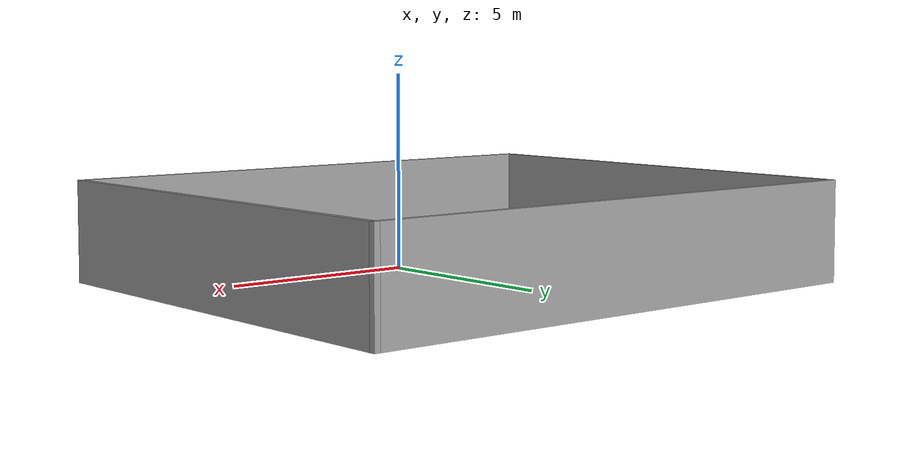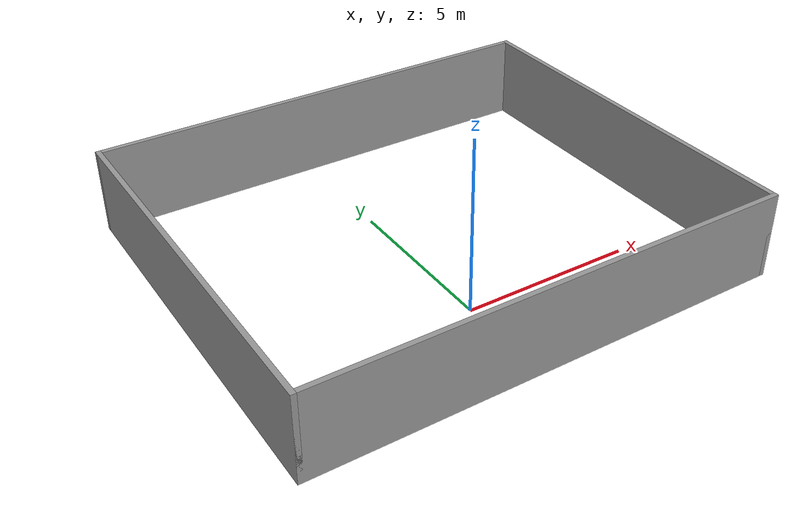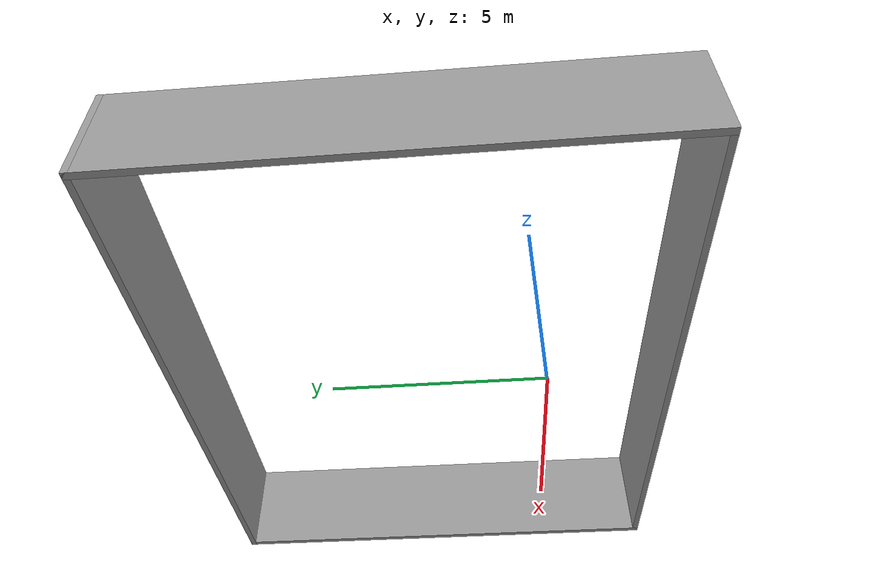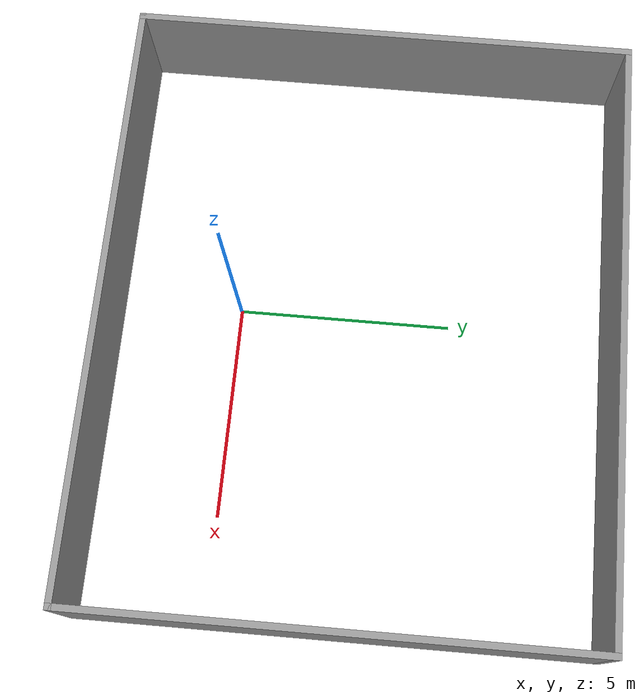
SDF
<?xml version='1.0'?>
<sdf version='1.6'>
  <model name='new_wall'>
    <pose frame=''>0.515 2.91 0 0 -0 0</pose>
    <link name='Wall_4'>
      <collision name='Wall_4_Collision'>
        <geometry>
          <box>
            <size>14 0.15 2.5</size>
          </box>
        </geometry>
        <pose frame=''>0 0 1.25 0 -0 0</pose>
      </collision>
      <visual name='Wall_4_Visual'>
        <pose frame=''>0 0 1.25 0 -0 0</pose>
        <geometry>
          <box>
            <size>14 0.15 2.5</size>
          </box>
        </geometry>
        <material>
          <script>
            <uri>file://media/materials/scripts/gazebo.material</uri>
            <name>Gazebo/Grey</name>
          </script>
          <ambient>1 1 1 1</ambient>
        </material>
        <meta>
          <layer>0</layer>
        </meta>
      </visual>
      <pose frame=''>-0 -5.8 0 0 -0 0</pose>
    </link>
    <link name='Wall_6'>
      <collision name='Wall_6_Collision'>
        <geometry>
          <box>
            <size>11.75 0.15 2.5</size>
          </box>
        </geometry>
        <pose frame=''>0 0 1.25 0 -0 0</pose>
      </collision>
      <visual name='Wall_6_Visual'>
        <pose frame=''>0 0 1.25 0 -0 0</pose>
        <geometry>
          <box>
            <size>11.75 0.15 2.5</size>
          </box>
        </geometry>
        <material>
          <script>
            <uri>file://media/materials/scripts/gazebo.material</uri>
            <name>Gazebo/Grey</name>
          </script>
          <ambient>1 1 1 1</ambient>
        </material>
        <meta>
          <layer>0</layer>
        </meta>
      </visual>
      <pose frame=''>6.925 -0 0 0 -0 1.5708</pose>
    </link>
    <link name='Wall_7'>
      <collision name='Wall_7_Collision'>
        <geometry>
          <box>
            <size>14 0.15 2.5</size>
          </box>
        </geometry>
        <pose frame=''>0 0 1.25 0 -0 0</pose>
      </collision>
      <visual name='Wall_7_Visual'>
        <pose frame=''>0 0 1.25 0 -0 0</pose>
        <geometry>
          <box>
            <size>14 0.15 2.5</size>
          </box>
        </geometry>
        <material>
          <script>
            <uri>file://media/materials/scripts/gazebo.material</uri>
            <name>Gazebo/Grey</name>
          </script>
          <ambient>1 1 1 1</ambient>
        </material>
        <meta>
          <layer>0</layer>
        </meta>
      </visual>
      <pose frame=''>-0 5.8 0 0 -0 3.14159</pose>
    </link>
    <link name='Wall_8'>
      <collision name='Wall_8_Collision'>
        <geometry>
          <box>
            <size>11.75 0.15 2.5</size>
          </box>
        </geometry>
        <pose frame=''>0 0 1.25 0 -0 0</pose>
      </collision>
      <visual name='Wall_8_Visual'>
        <pose frame=''>0 0 1.25 0 -0 0</pose>
        <geometry>
          <box>
            <size>11.75 0.15 2.5</size>
          </box>
        </geometry>
        <material>
          <script>
            <uri>file://media/materials/scripts/gazebo.material</uri>
            <name>Gazebo/Grey</name>
          </script>
          <ambient>1 1 1 1</ambient>
        </material>
        <meta>
          <layer>0</layer>
        </meta>
      </visual>
      <pose frame=''>-6.925 -0 0 0 -0 -1.5708</pose>
    </link>
    <static>1</static>
  </model>
</sdf>
